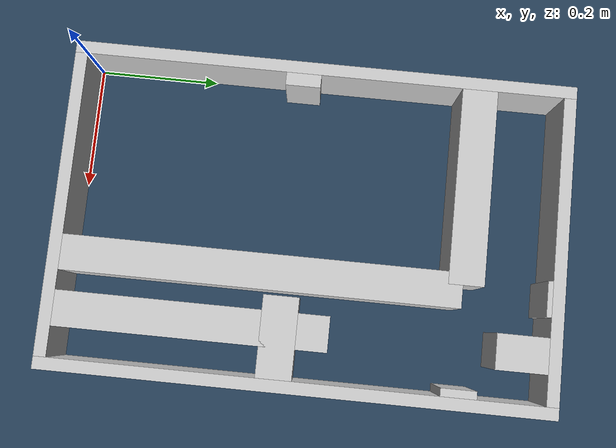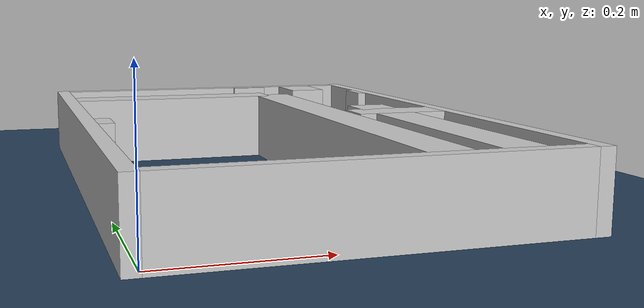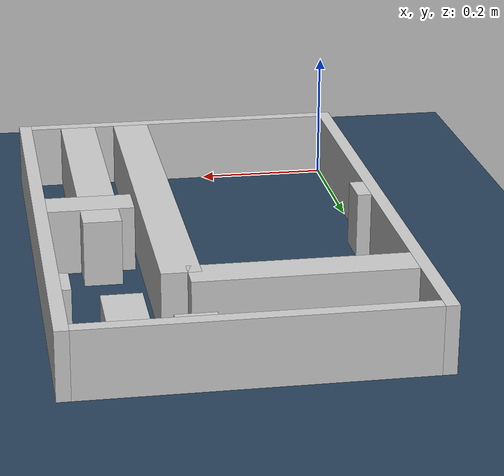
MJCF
<?xml version="1.0" ?>
<mujoco model="generated_real_template">
  <compiler angle="degree"/>
  <option timestep="0.002" integrator="implicitfast" iterations="100" cone="elliptic"/>
  <default>
    <geom density="1"/>
  </default>
  <asset>
    <texture builtin="gradient" height="3072" rgb1="0.3 0.5 0.7" rgb2="0 0 0" type="skybox" width="512"/>
    <texture builtin="checker" height="300" mark="edge" markrgb="0.8 0.8 0.8" name="groundplane" rgb1="0.2 0.3 0.4" rgb2="0.1 0.2 0.3" type="2d" width="300"/>
    <material name="groundplane" reflectance="0.2" texrepeat="5 5" texture="groundplane" texuniform="true"/>
  </asset>
  <worldbody>
    <light dir="0 0 -1" directional="true" pos="0 0 1.5"/>
    <geom name="floor" type="plane" condim="4" friction="0.5 0.005 0.001" material="groundplane" size="0 0 0.05"/>
    <body name="walls">
      <geom name="wall_boundary_left" type="box" condim="4" friction="1.0 0.005 0.0001" rgba="0.8 0.8 0.8 1" pos="-0.010000 0.387500 0.050000" euler="0 0 0.000000" size="0.010000 0.407500 0.050000"/>
      <geom name="wall_boundary_right" type="box" condim="4" friction="1.0 0.005 0.0001" rgba="0.8 0.8 0.8 1" pos="0.500000 0.387500 0.050000" euler="0 0 0.000000" size="0.010000 0.407500 0.050000"/>
      <geom name="wall_boundary_bottom" type="box" condim="4" friction="1.0 0.005 0.0001" rgba="0.8 0.8 0.8 1" pos="0.245000 -0.010000 0.050000" euler="0 0 0.000000" size="0.245000 0.010000 0.050000"/>
      <geom name="wall_boundary_top" type="box" condim="4" friction="1.0 0.005 0.0001" rgba="0.8 0.8 0.8 1" pos="0.245000 0.785000 0.050000" euler="0 0 0.000000" size="0.245000 0.010000 0.050000"/>
      <geom name="wall_inner_1_1" type="box" condim="4" friction="1.0 0.005 0.0001" rgba="0.8 0.8 0.8 1" pos="0.158173 0.639563 0.050000" euler="0 0 0.000000" size="0.158173 0.028500 0.050000"/>
      <geom name="wall_inner_1_2" type="box" condim="4" friction="1.0 0.005 0.0001" rgba="0.8 0.8 0.8 1" pos="0.483501 0.639563 0.050000" euler="0 0 0.000000" size="0.006499 0.028500 0.050000"/>
      <geom name="wall_inner_2_1" type="box" condim="4" friction="1.0 0.005 0.0001" rgba="0.8 0.8 0.8 1" pos="0.413221 0.216242 0.050000" euler="0 0 90.000000" size="0.216242 0.028500 0.050000"/>
      <geom name="wall_inner_2_2" type="box" condim="4" friction="1.0 0.005 0.0001" rgba="0.8 0.8 0.8 1" pos="0.413221 0.733707 0.050000" euler="0 0 90.000000" size="0.041293 0.028500 0.050000"/>
      <geom name="wall_inner_3_1" type="box" condim="4" friction="1.0 0.005 0.0001" rgba="0.8 0.8 0.8 1" pos="0.010680 0.353318 0.050000" euler="0 0 0.000000" size="0.010680 0.028500 0.050000"/>
      <geom name="wall_inner_3_2" type="box" condim="4" friction="1.0 0.005 0.0001" rgba="0.8 0.8 0.8 1" pos="0.425255 0.353318 0.050000" euler="0 0 0.000000" size="0.064745 0.028500 0.050000"/>
      <geom name="wall_inner_4_1" type="box" condim="4" friction="1.0 0.005 0.0001" rgba="0.8 0.8 0.8 1" pos="0.324929 0.317092 0.050000" euler="0 0 90.000000" size="0.317092 0.028500 0.050000"/>
      <geom name="wall_inner_4_2" type="box" condim="4" friction="1.0 0.005 0.0001" rgba="0.8 0.8 0.8 1" pos="0.324929 0.770900 0.050000" euler="0 0 90.000000" size="0.004100 0.028500 0.050000"/>
    </body>
  </worldbody>
</mujoco>
